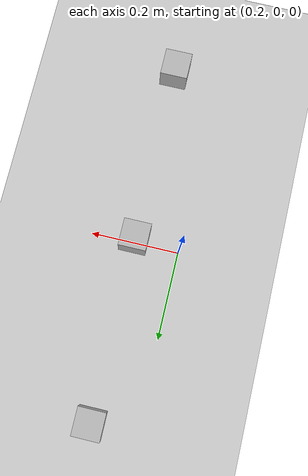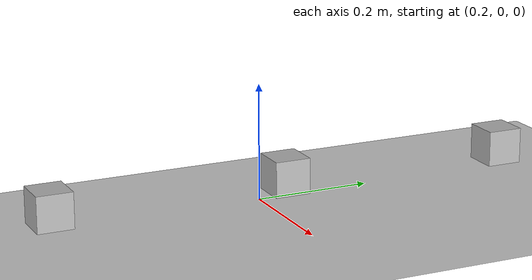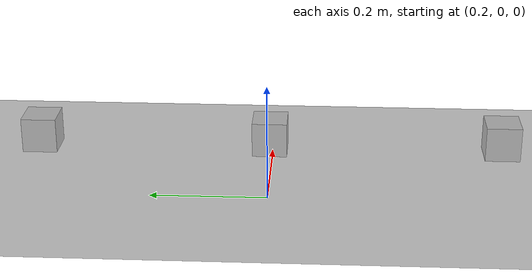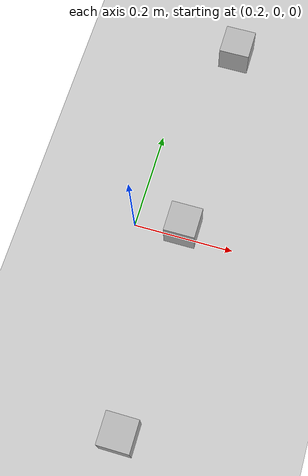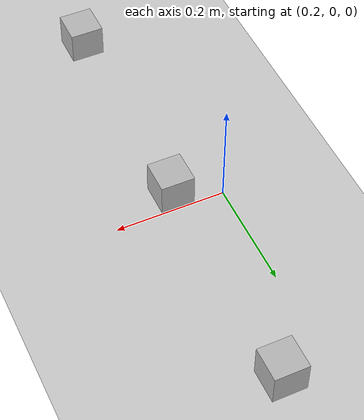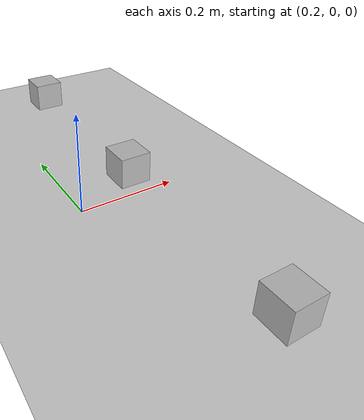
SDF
<?xml version="1.0" ?>

<sdf version="1.4">

  <world name="default">
    <include>
      <uri>model://ground_plane</uri>
    </include>

    <include>
      <uri>model://sun</uri>
    </include>
    <include>
      <pose>0.3 -0.4 0.05 0.0 0.0 0.0</pose>
      <uri>model://number1_</uri>
      <name>Number1</name>
    </include>
    <include>
      <pose>0.3 0.0 0.05 0.0 0.0 0.0</pose>
      <uri>model://number2_</uri>
      <name>Number2</name>
    </include>
    <include>
      <pose>0.3 0.4 0.05 0.0 0.0 0.0</pose>
      <uri>model://number3_</uri>
      <name>Number3</name>
    </include>

    <scene>
      <shadows>0</shadows>
    </scene>

    <plugin name="gazebo_ros_state" filename="libgazebo_ros_state.so">
      <ros>
        <namespace>/ros2_grasp</namespace>
        <argument>model_states:=model_states</argument>
        <argument>link_states:=link_states</argument>
      </ros>
      <update_rate>1.0</update_rate>
    </plugin>

    <plugin name="gazebo_ros_properties" filename="libgazebo_ros_properties.so">
      <ros>
        <namespace>/ros2_grasp</namespace>
      </ros>
    </plugin>

  </world>
</sdf>

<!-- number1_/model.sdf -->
<sdf version="1.6">
  <model name="number1_">
    <link name="num1_link">
      <pose>0 0 0.025 0 0 0</pose>
      <inertial>
        <mass>0.0565</mass>
        <inertia>
          <ixx>2.3541666666666672e-05</ixx>
          <ixy>0</ixy>
          <ixz>0</ixz>
          <iyy>2.3541666666666672e-05</iyy>
          <iyz>0</iyz>
          <izz>2.3541666666666672e-05</izz>
        </inertia>
      </inertial>

      <collision name="collision">
        <geometry>
          <box>
            <size>0.06 0.06 0.06</size>
          </box>
        </geometry>
        <surface>
          <contact>
            <!-- Red Pine coefficients for longitudinal axis of the wood
                 according to:
                 http://www.fpl.fs.fed.us/documnts/fplgtr/fplgtr113/ch04.pdf -->
            <poissons_ratio>0.347</poissons_ratio>
            <elastic_modulus>8.8e+09</elastic_modulus>
            <ode>
              <kp>100000</kp>
              <kd>1</kd>
              <max_vel>1.0</max_vel>
              <min_depth>0.001</min_depth>
            </ode>
          </contact>
          <friction>
            <torsional>
              <coefficient>1.0</coefficient>
              <use_patch_radius>0</use_patch_radius>
              <surface_radius>0.05</surface_radius>
            </torsional>
          </friction>
        </surface>
      </collision>

      <visual name="visual">
        <geometry>
          <box>
            <size>0.06 0.06 0.06</size>
          </box>
        </geometry>
        <material>
          <script>
            <uri>model://number1_/materials/scripts</uri>
            <uri>model://number1_/materials/textures</uri>
            <name>Number/One</name>
          </script>
        </material>
      </visual>
    </link>
  </model>
</sdf>

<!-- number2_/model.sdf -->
<sdf version="1.6">
  <model name="number2_">
    <link name="num2_link">
      <pose>0 0 0.025 0 0 0</pose>
      <inertial>
        <mass>0.0565</mass>
        <inertia>
          <ixx>2.3541666666666672e-05</ixx>
          <ixy>0</ixy>
          <ixz>0</ixz>
          <iyy>2.3541666666666672e-05</iyy>
          <iyz>0</iyz>
          <izz>2.3541666666666672e-05</izz>
        </inertia>
      </inertial>

      <collision name="collision">
        <geometry>
          <box>
            <size>0.06 0.06 0.06</size>
          </box>
        </geometry>
        <surface>
          <contact>
            <!-- Red Pine coefficients for longitudinal axis of the wood
                 according to:
                 http://www.fpl.fs.fed.us/documnts/fplgtr/fplgtr113/ch04.pdf -->
            <poissons_ratio>0.347</poissons_ratio>
            <elastic_modulus>8.8e+09</elastic_modulus>
            <ode>
              <kp>100000</kp>
              <kd>1</kd>
              <max_vel>1.0</max_vel>
              <min_depth>0.001</min_depth>
            </ode>
          </contact>
          <friction>
            <torsional>
              <coefficient>1.0</coefficient>
              <use_patch_radius>0</use_patch_radius>
              <surface_radius>0.05</surface_radius>
            </torsional>
          </friction>
        </surface>
      </collision>

      <visual name="visual">
        <geometry>
          <box>
            <size>0.06 0.06 0.06</size>
          </box>
        </geometry>
        <material>
          <script>
            <uri>model://number2_/materials/scripts</uri>
            <uri>model://number2_/materials/textures</uri>
            <name>Number/Two</name>
          </script>
        </material>
      </visual>
    </link>
  </model>
</sdf>

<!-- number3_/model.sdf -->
<sdf version="1.6">
  <model name="number3_">
    <link name="num3_link">
      <pose>0 0 0.025 0 0 0</pose>
      <inertial>
        <mass>0.0565</mass>
        <inertia>
          <ixx>2.3541666666666672e-05</ixx>
          <ixy>0</ixy>
          <ixz>0</ixz>
          <iyy>2.3541666666666672e-05</iyy>
          <iyz>0</iyz>
          <izz>2.3541666666666672e-05</izz>
        </inertia>
      </inertial>

      <collision name="collision">
        <geometry>
          <box>
            <size>0.06 0.06 0.06</size>
          </box>
        </geometry>
        <surface>
          <contact>
            <!-- Red Pine coefficients for longitudinal axis of the wood
                 according to:
                 http://www.fpl.fs.fed.us/documnts/fplgtr/fplgtr113/ch04.pdf -->
            <poissons_ratio>0.347</poissons_ratio>
            <elastic_modulus>8.8e+09</elastic_modulus>
            <ode>
              <kp>100000</kp>
              <kd>1</kd>
              <max_vel>1.0</max_vel>
              <min_depth>0.001</min_depth>
            </ode>
          </contact>
          <friction>
            <torsional>
              <coefficient>1.0</coefficient>
              <use_patch_radius>0</use_patch_radius>
              <surface_radius>0.05</surface_radius>
            </torsional>
          </friction>
        </surface>
      </collision>

      <visual name="visual">
        <geometry>
          <box>
            <size>0.06 0.06 0.06</size>
          </box>
        </geometry>
        <material>
          <script>
            <uri>model://number3_/materials/scripts</uri>
            <uri>model://number3_/materials/textures</uri>
            <name>Number/Three</name>
          </script>
        </material>
      </visual>
    </link>
  </model>
</sdf>
